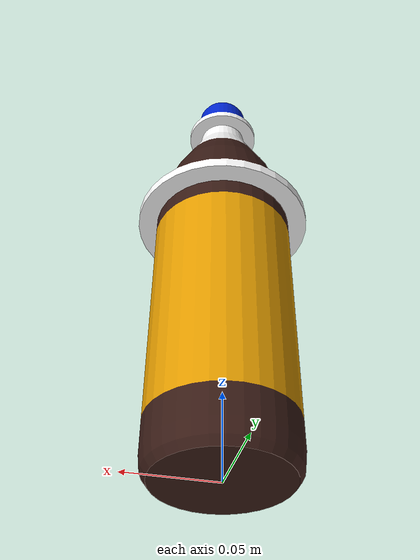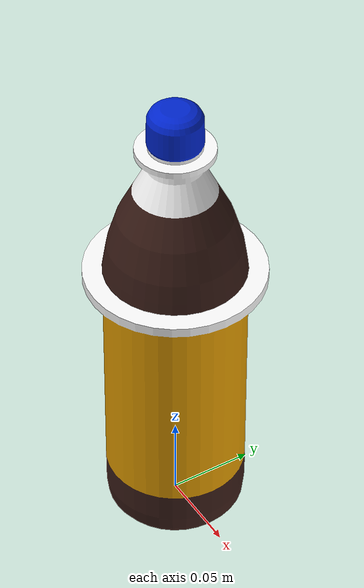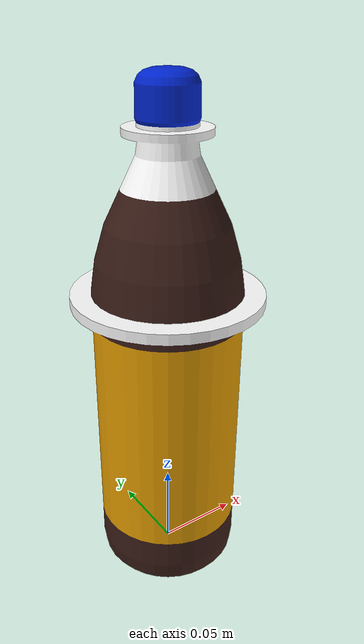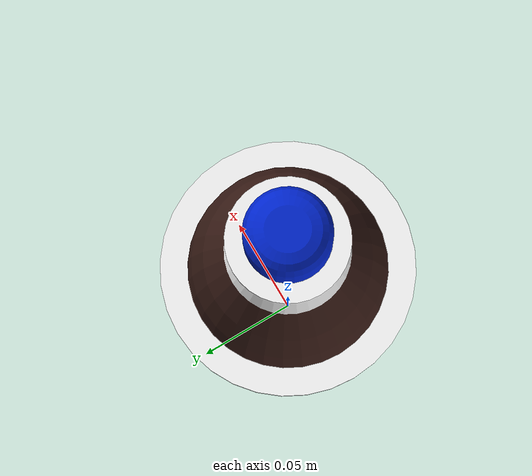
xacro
<robot name="bottle_pepsi">
    <link name="bottle_pepsi">
        <inertial>
            <origin xyz="0 0 0" rpy="0 0 0"/>
            <mass value="1"/>
            <inertia ixx="1" ixy="0" ixz="0" iyy="1" iyz="0" izz="1"/>
        </inertial>
        <visual>
            <origin xyz="0 0 0" rpy="0 0 0"/>
            <geometry>
                <mesh filename="package://tiago_barkeeper_world/meshes/bottle_pepsi.dae"/>
            </geometry>
        </visual>
        <collision>
            <origin xyz="0 0 0" rpy="0 0 0"/>
            <geometry>
                <mesh filename="package://tiago_barkeeper_world/meshes/bottle_pepsi.dae"/>
            </geometry>
        </collision>
    </link>
    <gazebo reference="bottle_pepsi">
        <mu1>1.0</mu1>
        <mu2>1.0</mu2>
    </gazebo>
</robot>
